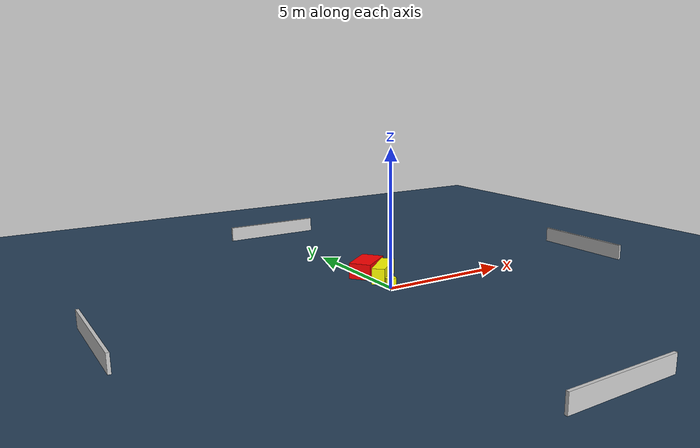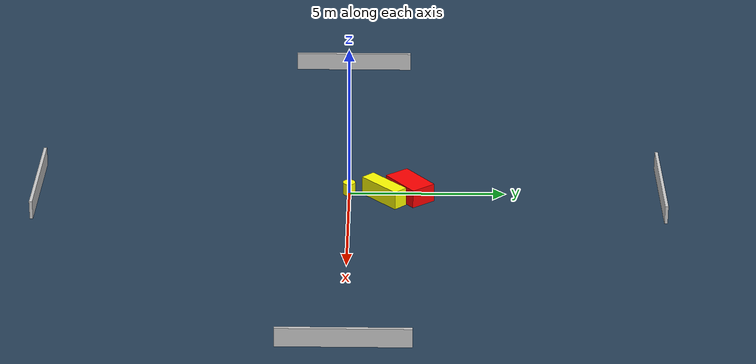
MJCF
<?xml version="1.0" ?>
<mujoco model="generated_environment">
  <option timestep="0.01" integrator="RK4" cone="elliptic"/>
  <default>
    <geom density="1"/>
  </default>
  <asset>
    <texture builtin="gradient" height="3072" name="skybox" rgb1="0.3 0.5 0.7" rgb2="0 0 0" type="skybox" width="512"/>
    <texture builtin="checker" height="300" name="groundplane" rgb1="0.2 0.3 0.4" rgb2="0.1 0.2 0.3" type="2d" width="300"/>
    <material name="groundplane" reflectance="0.2" texrepeat="5 5" texture="groundplane"/>
  </asset>
  <worldbody>
    <light dir="0 0 -1" directional="true" pos="0 0 1.5"/>
    <geom condim="3" friction="0.5 0.005 0.001" material="groundplane" name="floor" pos="0 0 0" size="0 0 0.05" type="plane"/>
    <body name="walls">
      <geom name="wall_1" condim="4" pos="-10.0 0.0 0.3" rgba="0.800000011920929 0.800000011920929 0.800000011920929 1.0" size="0.05 2.0 0.3" type="box"/>
      <geom name="wall_2" condim="4" pos="10.0 0.0 0.3" rgba="0.800000011920929 0.800000011920929 0.800000011920929 1.0" size="0.05 2.0 0.3" type="box"/>
      <geom name="wall_3" condim="4" pos="0.0 -10.0 0.3" rgba="0.800000011920929 0.800000011920929 0.800000011920929 1.0" size="2.0 0.05 0.3" type="box"/>
      <geom name="wall_4" condim="4" pos="0.0 10.0 0.3" rgba="0.800000011920929 0.800000011920929 0.800000011920929 1.0" size="2.0 0.05 0.3" type="box"/>
    </body>
    <body name="robot">
      <joint name="joint_x" type="slide" pos="0 0 0" axis="1 0 0"/>
      <joint name="joint_y" type="slide" pos="0 0 0" axis="0 1 0"/>
      <geom name="robot" type="cylinder" pos="0.0 0.0 0.2" size="0.2 0.2 0.0" mass="5.0" friction="1.0 0.005 0.0001" condim="4" rgba="1.0 1.0 0.0 1.0"/>
    </body>
    <body name="obstacle_1_movable">
      <geom name="obstacle_1_movable" condim="4" pos="0.41091389678100787 1.1228011457392133 0.3" euler="0 0 43.39063776969174" friction="0.0 0.005 0.001" rgba="1.0 1.0 0.0 1.0" size="0.7692298509943551 0.24456117083617746 0.3" type="box" mass="0.1"/>
      <joint type="free"/>
    </body>
    <body name="obstacle_2_static">
      <geom name="obstacle_2_static" condim="4" pos="0.1971452840321211 1.950986759700551 0.3" euler="0 0 127.1347529450826" friction="0.0 0.005 0.001" rgba="1.0 0.0 0.0 1.0" size="0.4244033806471855 0.7116222522622444 0.3" type="box"/>
    </body>
  </worldbody>
  <actuator>
    <motor name="actuator_x" joint="joint_x" gear="1" ctrlrange="-1 1"/>
    <motor name="actuator_y" joint="joint_y" gear="1" ctrlrange="-1 1"/>
  </actuator>
</mujoco>
